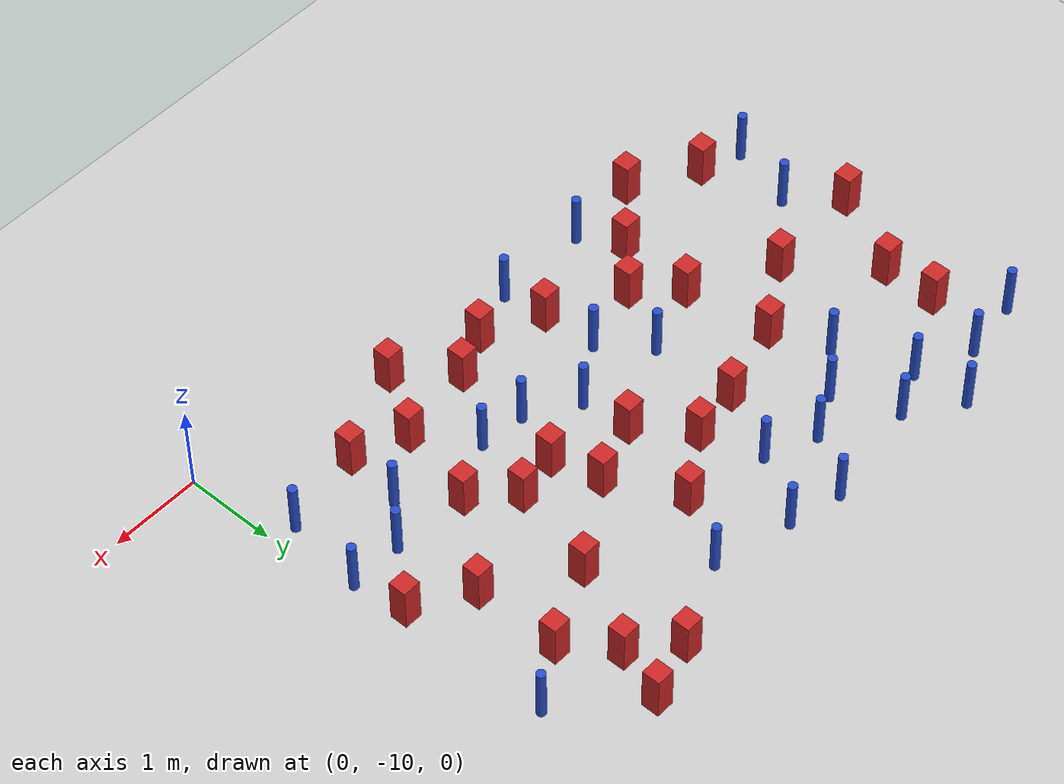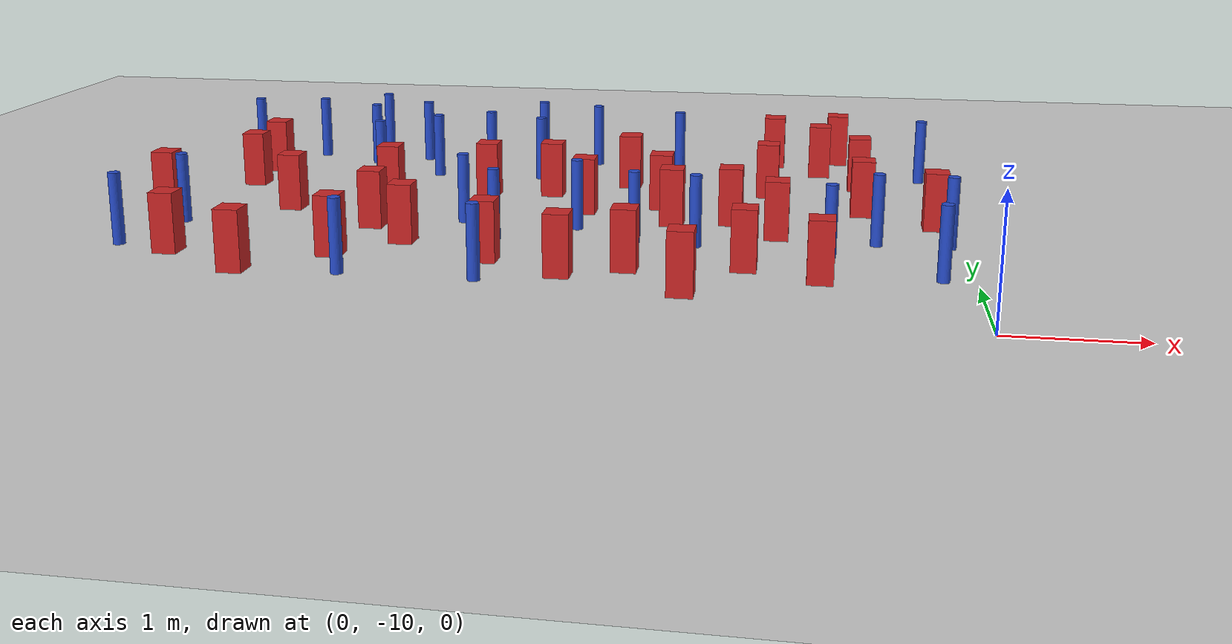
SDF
<sdf version="1.6">
 <world name="default">
  <model name="ground_plane">
   <static>1</static>
   <link name="link">
    <collision name="collision">
     <geometry><plane><normal>0 0 1</normal><size>100 100</size></plane></geometry>
     <surface><friction><ode><mu>100</mu><mu2>50</mu2></ode></friction></surface>
    </collision>
    <visual name="visual">
     <cast_shadows>0</cast_shadows>
     <geometry><plane><normal>0 0 1</normal><size>100 100</size></plane></geometry>
     <material>
      <ambient>1.0 1.0 1.0 1.0</ambient>
      <diffuse>0.8 0.8 0.8 1.0</diffuse>
      <specular>0.01 0.01 0.01 1.000000</specular>
     </material>
    </visual>
   </link>
  </model>
  <model name="pole_obstacle7">
   <static>true</static>
   <pose>-2.53823179781 -5.63883485997 2.88873142074e-08 -9.90536689859e-09 4.60219948989e-07 -1.20965994961e-07</pose>
   <link name="link">
    <pose>0 0 0.3 0 -0 0</pose>
    <inertial>
     <mass>1</mass>
     <inertia><ixx>0.145833</ixx><ixy>0</ixy><ixz>0</ixz><iyy>0.145833</iyy><iyz>0</iyz><izz>0.125</izz></inertia>
    </inertial>
    <collision name="collision">
     <geometry><cylinder><radius>0.05</radius><length>.6</length></cylinder></geometry>
    </collision>
    <visual name="visual">
     <geometry><cylinder><radius>0.05</radius><length>.6</length></cylinder></geometry>
     <material>
      <script><name>Gazebo/Blue</name><uri>file://media/materials/scripts/gazebo.material</uri></script>
     </material>
    </visual>
   </link>
  </model>
  <model name="square_post_obstacle12">
   <static>true</static>
   <pose>-4.19617129068 -6.83578987014 8.22691968438e-08 7.22125133819e-06 -7.54495500217e-07 2.29674213826e-05</pose>
   <link name="link">
    <pose>0 0 0.25 0 -0 0</pose>
    <inertial>
     <mass>100</mass>
     <inertia>
      <ixx>0.166667</ixx>
      <ixy>0</ixy>
      <ixz>0</ixz>
      <iyy>0.166667</iyy>
      <iyz>0</iyz>
      <izz>0.166667</izz>
     </inertia>
    </inertial>
    <collision name="collision"><geometry><box><size>.2 .2 .5</size></box></geometry></collision>
    <visual name="visual">
     <geometry><box><size>.2 .2 .5</size></box></geometry>
     <material>
      <script><name>Gazebo/Red</name><uri>file://media/materials/scripts/gazebo.material</uri></script>
     </material>
    </visual>
   </link>
  </model>
  <model name="pole_obstacle8">
   <static>true</static>
   <pose>-3.8167957619 -8.28989017368 2.88873142074e-08 -9.90536692318e-09 4.6021994893e-07 -1.20965994988e-07</pose>
   <link name="link">
    <pose>0 0 0.3 0 -0 0</pose>
    <inertial>
     <mass>1</mass>
     <inertia><ixx>0.145833</ixx><ixy>0</ixy><ixz>0</ixz><iyy>0.145833</iyy><iyz>0</iyz><izz>0.125</izz></inertia>
    </inertial>
    <collision name="collision">
     <geometry><cylinder><radius>0.05</radius><length>.6</length></cylinder></geometry>
    </collision>
    <visual name="visual">
     <geometry><cylinder><radius>0.05</radius><length>.6</length></cylinder></geometry>
     <material>
      <script><name>Gazebo/Blue</name><uri>file://media/materials/scripts/gazebo.material</uri></script>
     </material>
    </visual>
   </link>
  </model>
  <model name="square_post_obstacle18">
   <static>true</static>
   <pose>-0.201913750008 -7.39393209585 8.22691968438e-08 7.22125133819e-06 -7.54495500217e-07 2.29674213826e-05</pose>
   <link name="link">
    <pose>0 0 0.25 0 -0 0</pose>
    <inertial>
     <mass>100</mass>
     <inertia>
      <ixx>0.166667</ixx>
      <ixy>0</ixy>
      <ixz>0</ixz>
      <iyy>0.166667</iyy>
      <iyz>0</iyz>
      <izz>0.166667</izz>
     </inertia>
    </inertial>
    <collision name="collision"><geometry><box><size>.2 .2 .5</size></box></geometry></collision>
    <visual name="visual">
     <geometry><box><size>.2 .2 .5</size></box></geometry>
     <material>
      <script><name>Gazebo/Red</name><uri>file://media/materials/scripts/gazebo.material</uri></script>
     </material>
    </visual>
   </link>
  </model>
  <model name="square_post_obstacle24">
   <static>true</static>
   <pose>-6.49532119859 -6.15392785858 8.22691968438e-08 7.22125133819e-06 -7.54495500217e-07 2.29674213826e-05</pose>
   <link name="link">
    <pose>0 0 0.25 0 -0 0</pose>
    <inertial>
     <mass>100</mass>
     <inertia>
      <ixx>0.166667</ixx>
      <ixy>0</ixy>
      <ixz>0</ixz>
      <iyy>0.166667</iyy>
      <iyz>0</iyz>
      <izz>0.166667</izz>
     </inertia>
    </inertial>
    <collision name="collision"><geometry><box><size>.2 .2 .5</size></box></geometry></collision>
    <visual name="visual">
     <geometry><box><size>.2 .2 .5</size></box></geometry>
     <material>
      <script><name>Gazebo/Red</name><uri>file://media/materials/scripts/gazebo.material</uri></script>
     </material>
    </visual>
   </link>
  </model>
  <model name="square_post_obstacle30">
   <static>true</static>
   <pose>-0.804594733493 -6.08926844251 8.22691968438e-08 7.2212513382e-06 -7.54495500217e-07 2.29674213826e-05</pose>
   <link name="link">
    <pose>0 0 0.25 0 -0 0</pose>
    <inertial>
     <mass>100</mass>
     <inertia>
      <ixx>0.166667</ixx>
      <ixy>0</ixy>
      <ixz>0</ixz>
      <iyy>0.166667</iyy>
      <iyz>0</iyz>
      <izz>0.166667</izz>
     </inertia>
    </inertial>
    <collision name="collision"><geometry><box><size>.2 .2 .5</size></box></geometry></collision>
    <visual name="visual">
     <geometry><box><size>.2 .2 .5</size></box></geometry>
     <material>
      <script><name>Gazebo/Red</name><uri>file://media/materials/scripts/gazebo.material</uri></script>
     </material>
    </visual>
   </link>
  </model>
  <model name="pole_obstacle36">
   <static>true</static>
   <pose>-5.63041710277 -5.70311133235 2.88873142074e-08 -9.90536690842e-09 4.60219948965e-07 -1.20965994976e-07</pose>
   <link name="link">
    <pose>0 0 0.3 0 -0 0</pose>
    <inertial>
     <mass>1</mass>
     <inertia><ixx>0.145833</ixx><ixy>0</ixy><ixz>0</ixz><iyy>0.145833</iyy><iyz>0</iyz><izz>0.125</izz></inertia>
    </inertial>
    <collision name="collision">
     <geometry><cylinder><radius>0.05</radius><length>.6</length></cylinder></geometry>
    </collision>
    <visual name="visual">
     <geometry><cylinder><radius>0.05</radius><length>.6</length></cylinder></geometry>
     <material>
      <script><name>Gazebo/Blue</name><uri>file://media/materials/scripts/gazebo.material</uri></script>
     </material>
    </visual>
   </link>
  </model>
  <model name="square_post_obstacle46">
   <static>true</static>
   <pose>-1.91938755786 -7.49472343952 8.22691968438e-08 7.2212513382e-06 -7.54495500217e-07 2.29674213826e-05</pose>
   <link name="link">
    <pose>0 0 0.25 0 -0 0</pose>
    <inertial>
     <mass>100</mass>
     <inertia>
      <ixx>0.166667</ixx>
      <ixy>0</ixy>
      <ixz>0</ixz>
      <iyy>0.166667</iyy>
      <iyz>0</iyz>
      <izz>0.166667</izz>
     </inertia>
    </inertial>
    <collision name="collision"><geometry><box><size>.2 .2 .5</size></box></geometry></collision>
    <visual name="visual">
     <geometry><box><size>.2 .2 .5</size></box></geometry>
     <material>
      <script><name>Gazebo/Red</name><uri>file://media/materials/scripts/gazebo.material</uri></script>
     </material>
    </visual>
   </link>
  </model>
  <model name="square_post_obstacle50">
   <static>true</static>
   <pose>-3.60878242614 -6.73543545091 8.22691968438e-08 7.2212513382e-06 -7.54495500217e-07 2.29674213826e-05</pose>
   <link name="link">
    <pose>0 0 0.25 0 -0 0</pose>
    <inertial>
     <mass>100</mass>
     <inertia>
      <ixx>0.166667</ixx>
      <ixy>0</ixy>
      <ixz>0</ixz>
      <iyy>0.166667</iyy>
      <iyz>0</iyz>
      <izz>0.166667</izz>
     </inertia>
    </inertial>
    <collision name="collision"><geometry><box><size>.2 .2 .5</size></box></geometry></collision>
    <visual name="visual">
     <geometry><box><size>.2 .2 .5</size></box></geometry>
     <material>
      <script><name>Gazebo/Red</name><uri>file://media/materials/scripts/gazebo.material</uri></script>
     </material>
    </visual>
   </link>
  </model>
  <model name="square_post_obstacle53">
   <static>true</static>
   <pose>-2.64235110089 -8.9488011302 8.22691968438e-08 7.22125133819e-06 -7.54495500217e-07 2.29674213826e-05</pose>
   <link name="link">
    <pose>0 0 0.25 0 -0 0</pose>
    <inertial>
     <mass>100</mass>
     <inertia>
      <ixx>0.166667</ixx>
      <ixy>0</ixy>
      <ixz>0</ixz>
      <iyy>0.166667</iyy>
      <iyz>0</iyz>
      <izz>0.166667</izz>
     </inertia>
    </inertial>
    <collision name="collision"><geometry><box><size>.2 .2 .5</size></box></geometry></collision>
    <visual name="visual">
     <geometry><box><size>.2 .2 .5</size></box></geometry>
     <material>
      <script><name>Gazebo/Red</name><uri>file://media/materials/scripts/gazebo.material</uri></script>
     </material>
    </visual>
   </link>
  </model>
  <model name="pole_obstacle61">
   <static>true</static>
   <pose>-0.251371558952 -8.87510995026 2.88873142074e-08 -9.90536690955e-09 4.60219948963e-07 -1.20965994979e-07</pose>
   <link name="link">
    <pose>0 0 0.3 0 -0 0</pose>
    <inertial>
     <mass>1</mass>
     <inertia><ixx>0.145833</ixx><ixy>0</ixy><ixz>0</ixz><iyy>0.145833</iyy><iyz>0</iyz><izz>0.125</izz></inertia>
    </inertial>
    <collision name="collision">
     <geometry><cylinder><radius>0.05</radius><length>.6</length></cylinder></geometry>
    </collision>
    <visual name="visual">
     <geometry><cylinder><radius>0.05</radius><length>.6</length></cylinder></geometry>
     <material>
      <script><name>Gazebo/Blue</name><uri>file://media/materials/scripts/gazebo.material</uri></script>
     </material>
    </visual>
   </link>
  </model>
  <model name="square_post_obstacle66">
   <static>true</static>
   <pose>-2.56159638467 -7.05934054008 8.22691968438e-08 7.2212513382e-06 -7.54495500217e-07 2.29674213826e-05</pose>
   <link name="link">
    <pose>0 0 0.25 0 -0 0</pose>
    <inertial>
     <mass>100</mass>
     <inertia>
      <ixx>0.166667</ixx>
      <ixy>0</ixy>
      <ixz>0</ixz>
      <iyy>0.166667</iyy>
      <iyz>0</iyz>
      <izz>0.166667</izz>
     </inertia>
    </inertial>
    <collision name="collision"><geometry><box><size>.2 .2 .5</size></box></geometry></collision>
    <visual name="visual">
     <geometry><box><size>.2 .2 .5</size></box></geometry>
     <material>
      <script><name>Gazebo/Red</name><uri>file://media/materials/scripts/gazebo.material</uri></script>
     </material>
    </visual>
   </link>
  </model>
  <model name="pole_obstacle67">
   <static>true</static>
   <pose>-5.14585500633 -5.47694997933 2.88873142074e-08 -9.90536690842e-09 4.60219948965e-07 -1.20965994976e-07</pose>
   <link name="link">
    <pose>0 0 0.3 0 -0 0</pose>
    <inertial>
     <mass>1</mass>
     <inertia><ixx>0.145833</ixx><ixy>0</ixy><ixz>0</ixz><iyy>0.145833</iyy><iyz>0</iyz><izz>0.125</izz></inertia>
    </inertial>
    <collision name="collision">
     <geometry><cylinder><radius>0.05</radius><length>.6</length></cylinder></geometry>
    </collision>
    <visual name="visual">
     <geometry><cylinder><radius>0.05</radius><length>.6</length></cylinder></geometry>
     <material>
      <script><name>Gazebo/Blue</name><uri>file://media/materials/scripts/gazebo.material</uri></script>
     </material>
    </visual>
   </link>
  </model>
  <model name="square_post_obstacle71">
   <static>true</static>
   <pose>-2.41511090187 -7.59028806534 8.22691968438e-08 7.22125133819e-06 -7.54495500217e-07 2.29674213826e-05</pose>
   <link name="link">
    <pose>0 0 0.25 0 -0 0</pose>
    <inertial>
     <mass>100</mass>
     <inertia>
      <ixx>0.166667</ixx>
      <ixy>0</ixy>
      <ixz>0</ixz>
      <iyy>0.166667</iyy>
      <iyz>0</iyz>
      <izz>0.166667</izz>
     </inertia>
    </inertial>
    <collision name="collision"><geometry><box><size>.2 .2 .5</size></box></geometry></collision>
    <visual name="visual">
     <geometry><box><size>.2 .2 .5</size></box></geometry>
     <material>
      <script><name>Gazebo/Red</name><uri>file://media/materials/scripts/gazebo.material</uri></script>
     </material>
    </visual>
   </link>
  </model>
  <model name="square_post_obstacle72">
   <static>true</static>
   <pose>-3.21779357738 -7.30907759392 8.22691968438e-08 7.2212513382e-06 -7.54495500217e-07 2.29674213826e-05</pose>
   <link name="link">
    <pose>0 0 0.25 0 -0 0</pose>
    <inertial>
     <mass>100</mass>
     <inertia>
      <ixx>0.166667</ixx>
      <ixy>0</ixy>
      <ixz>0</ixz>
      <iyy>0.166667</iyy>
      <iyz>0</iyz>
      <izz>0.166667</izz>
     </inertia>
    </inertial>
    <collision name="collision"><geometry><box><size>.2 .2 .5</size></box></geometry></collision>
    <visual name="visual">
     <geometry><box><size>.2 .2 .5</size></box></geometry>
     <material>
      <script><name>Gazebo/Red</name><uri>file://media/materials/scripts/gazebo.material</uri></script>
     </material>
    </visual>
   </link>
  </model>
  <model name="pole_obstacle74">
   <static>true</static>
   <pose>-0.124680964791 -7.98603724583 2.88873142074e-08 -9.90536690297e-09 4.60219948978e-07 -1.20965994968e-07</pose>
   <link name="link">
    <pose>0 0 0.3 0 -0 0</pose>
    <inertial>
     <mass>1</mass>
     <inertia><ixx>0.145833</ixx><ixy>0</ixy><ixz>0</ixz><iyy>0.145833</iyy><iyz>0</iyz><izz>0.125</izz></inertia>
    </inertial>
    <collision name="collision">
     <geometry><cylinder><radius>0.05</radius><length>.6</length></cylinder></geometry>
    </collision>
    <visual name="visual">
     <geometry><cylinder><radius>0.05</radius><length>.6</length></cylinder></geometry>
     <material>
      <script><name>Gazebo/Blue</name><uri>file://media/materials/scripts/gazebo.material</uri></script>
     </material>
    </visual>
   </link>
  </model>
  <model name="square_post_obstacle79">
   <static>true</static>
   <pose>-0.993597124089 -5.01453886568 8.22691968438e-08 7.22125133819e-06 -7.54495500217e-07 2.29674213826e-05</pose>
   <link name="link">
    <pose>0 0 0.25 0 -0 0</pose>
    <inertial>
     <mass>100</mass>
     <inertia>
      <ixx>0.166667</ixx>
      <ixy>0</ixy>
      <ixz>0</ixz>
      <iyy>0.166667</iyy>
      <iyz>0</iyz>
      <izz>0.166667</izz>
     </inertia>
    </inertial>
    <collision name="collision"><geometry><box><size>.2 .2 .5</size></box></geometry></collision>
    <visual name="visual">
     <geometry><box><size>.2 .2 .5</size></box></geometry>
     <material>
      <script><name>Gazebo/Red</name><uri>file://media/materials/scripts/gazebo.material</uri></script>
     </material>
    </visual>
   </link>
  </model>
  <model name="pole_obstacle82">
   <static>true</static>
   <pose>-6.58360418045 -8.16239508596 2.88873142074e-08 -9.9053668967e-09 4.60219948993e-07 -1.20965994957e-07</pose>
   <link name="link">
    <pose>0 0 0.3 0 -0 0</pose>
    <inertial>
     <mass>1</mass>
     <inertia><ixx>0.145833</ixx><ixy>0</ixy><ixz>0</ixz><iyy>0.145833</iyy><iyz>0</iyz><izz>0.125</izz></inertia>
    </inertial>
    <collision name="collision">
     <geometry><cylinder><radius>0.05</radius><length>.6</length></cylinder></geometry>
    </collision>
    <visual name="visual">
     <geometry><cylinder><radius>0.05</radius><length>.6</length></cylinder></geometry>
     <material>
      <script><name>Gazebo/Blue</name><uri>file://media/materials/scripts/gazebo.material</uri></script>
     </material>
    </visual>
   </link>
  </model>
  <model name="square_post_obstacle81">
   <static>true</static>
   <pose>-1.7392110517 -8.80446424454 8.22691968438e-08 7.2212513382e-06 -7.54495500217e-07 2.29674213826e-05</pose>
   <link name="link">
    <pose>0 0 0.25 0 -0 0</pose>
    <inertial>
     <mass>100</mass>
     <inertia>
      <ixx>0.166667</ixx>
      <ixy>0</ixy>
      <ixz>0</ixz>
      <iyy>0.166667</iyy>
      <iyz>0</iyz>
      <izz>0.166667</izz>
     </inertia>
    </inertial>
    <collision name="collision"><geometry><box><size>.2 .2 .5</size></box></geometry></collision>
    <visual name="visual">
     <geometry><box><size>.2 .2 .5</size></box></geometry>
     <material>
      <script><name>Gazebo/Red</name><uri>file://media/materials/scripts/gazebo.material</uri></script>
     </material>
    </visual>
   </link>
  </model>
  <model name="pole_obstacle94">
   <static>true</static>
   <pose>-6.26370341023 -5.45382751526 2.88873142074e-08 -9.90536690842e-09 4.60219948965e-07 -1.20965994976e-07</pose>
   <link name="link">
    <pose>0 0 0.3 0 -0 0</pose>
    <inertial>
     <mass>1</mass>
     <inertia><ixx>0.145833</ixx><ixy>0</ixy><ixz>0</ixz><iyy>0.145833</iyy><iyz>0</iyz><izz>0.125</izz></inertia>
    </inertial>
    <collision name="collision">
     <geometry><cylinder><radius>0.05</radius><length>.6</length></cylinder></geometry>
    </collision>
    <visual name="visual">
     <geometry><cylinder><radius>0.05</radius><length>.6</length></cylinder></geometry>
     <material>
      <script><name>Gazebo/Blue</name><uri>file://media/materials/scripts/gazebo.material</uri></script>
     </material>
    </visual>
   </link>
  </model>
  <model name="pole_obstacle97">
   <static>true</static>
   <pose>-3.84303550367 -6.12399940535 2.88873142074e-08 -9.90536689859e-09 4.60219948989e-07 -1.20965994961e-07</pose>
   <link name="link">
    <pose>0 0 0.3 0 -0 0</pose>
    <inertial>
     <mass>1</mass>
     <inertia><ixx>0.145833</ixx><ixy>0</ixy><ixz>0</ixz><iyy>0.145833</iyy><iyz>0</iyz><izz>0.125</izz></inertia>
    </inertial>
    <collision name="collision">
     <geometry><cylinder><radius>0.05</radius><length>.6</length></cylinder></geometry>
    </collision>
    <visual name="visual">
     <geometry><cylinder><radius>0.05</radius><length>.6</length></cylinder></geometry>
     <material>
      <script><name>Gazebo/Blue</name><uri>file://media/materials/scripts/gazebo.material</uri></script>
     </material>
    </visual>
   </link>
  </model>
  <model name="pole_obstacle99">
   <static>true</static>
   <pose>-4.38720206674 -5.90240048466 2.88873142074e-08 -9.90536690842e-09 4.60219948965e-07 -1.20965994976e-07</pose>
   <link name="link">
    <pose>0 0 0.3 0 -0 0</pose>
    <inertial>
     <mass>1</mass>
     <inertia><ixx>0.145833</ixx><ixy>0</ixy><ixz>0</ixz><iyy>0.145833</iyy><iyz>0</iyz><izz>0.125</izz></inertia>
    </inertial>
    <collision name="collision">
     <geometry><cylinder><radius>0.05</radius><length>.6</length></cylinder></geometry>
    </collision>
    <visual name="visual">
     <geometry><cylinder><radius>0.05</radius><length>.6</length></cylinder></geometry>
     <material>
      <script><name>Gazebo/Blue</name><uri>file://media/materials/scripts/gazebo.material</uri></script>
     </material>
    </visual>
   </link>
  </model>
  <model name="square_post_obstacle89">
   <static>true</static>
   <pose>-2.16073549071 -9.47947698504 8.22691968438e-08 7.22125133819e-06 -7.54495500217e-07 2.29674213826e-05</pose>
   <link name="link">
    <pose>0 0 0.25 0 -0 0</pose>
    <inertial>
     <mass>100</mass>
     <inertia>
      <ixx>0.166667</ixx>
      <ixy>0</ixy>
      <ixz>0</ixz>
      <iyy>0.166667</iyy>
      <iyz>0</iyz>
      <izz>0.166667</izz>
     </inertia>
    </inertial>
    <collision name="collision"><geometry><box><size>.2 .2 .5</size></box></geometry></collision>
    <visual name="visual">
     <geometry><box><size>.2 .2 .5</size></box></geometry>
     <material>
      <script><name>Gazebo/Red</name><uri>file://media/materials/scripts/gazebo.material</uri></script>
     </material>
    </visual>
   </link>
  </model>
  <model name="square_post_obstacle100">
   <static>true</static>
   <pose>-1.61738704206 -5.20418120068 8.22691968438e-08 7.2212513382e-06 -7.54495500217e-07 2.29674213826e-05</pose>
   <link name="link">
    <pose>0 0 0.25 0 -0 0</pose>
    <inertial>
     <mass>100</mass>
     <inertia>
      <ixx>0.166667</ixx>
      <ixy>0</ixy>
      <ixz>0</ixz>
      <iyy>0.166667</iyy>
      <iyz>0</iyz>
      <izz>0.166667</izz>
     </inertia>
    </inertial>
    <collision name="collision"><geometry><box><size>.2 .2 .5</size></box></geometry></collision>
    <visual name="visual">
     <geometry><box><size>.2 .2 .5</size></box></geometry>
     <material>
      <script><name>Gazebo/Red</name><uri>file://media/materials/scripts/gazebo.material</uri></script>
     </material>
    </visual>
   </link>
  </model>
  <model name="square_post_obstacle102">
   <static>true</static>
   <pose>-5.06215263185 -7.08496848797 8.22691968438e-08 7.22125133819e-06 -7.54495500217e-07 2.29674213826e-05</pose>
   <link name="link">
    <pose>0 0 0.25 0 -0 0</pose>
    <inertial>
     <mass>100</mass>
     <inertia>
      <ixx>0.166667</ixx>
      <ixy>0</ixy>
      <ixz>0</ixz>
      <iyy>0.166667</iyy>
      <iyz>0</iyz>
      <izz>0.166667</izz>
     </inertia>
    </inertial>
    <collision name="collision"><geometry><box><size>.2 .2 .5</size></box></geometry></collision>
    <visual name="visual">
     <geometry><box><size>.2 .2 .5</size></box></geometry>
     <material>
      <script><name>Gazebo/Red</name><uri>file://media/materials/scripts/gazebo.material</uri></script>
     </material>
    </visual>
   </link>
  </model>
  <model name="square_post_obstacle104">
   <static>true</static>
   <pose>-5.82538586305 -7.56994802774 8.22691968438e-08 7.22125133819e-06 -7.54495500217e-07 2.29674213826e-05</pose>
   <link name="link">
    <pose>0 0 0.25 0 -0 0</pose>
    <inertial>
     <mass>100</mass>
     <inertia>
      <ixx>0.166667</ixx>
      <ixy>0</ixy>
      <ixz>0</ixz>
      <iyy>0.166667</iyy>
      <iyz>0</iyz>
      <izz>0.166667</izz>
     </inertia>
    </inertial>
    <collision name="collision"><geometry><box><size>.2 .2 .5</size></box></geometry></collision>
    <visual name="visual">
     <geometry><box><size>.2 .2 .5</size></box></geometry>
     <material>
      <script><name>Gazebo/Red</name><uri>file://media/materials/scripts/gazebo.material</uri></script>
     </material>
    </visual>
   </link>
  </model>
  <model name="square_post_obstacle110">
   <static>true</static>
   <pose>-1.17105818911 -5.57972504633 8.22691968438e-08 7.2212513382e-06 -7.54495500217e-07 2.29674213826e-05</pose>
   <link name="link">
    <pose>0 0 0.25 0 -0 0</pose>
    <inertial>
     <mass>100</mass>
     <inertia>
      <ixx>0.166667</ixx>
      <ixy>0</ixy>
      <ixz>0</ixz>
      <iyy>0.166667</iyy>
      <iyz>0</iyz>
      <izz>0.166667</izz>
     </inertia>
    </inertial>
    <collision name="collision"><geometry><box><size>.2 .2 .5</size></box></geometry></collision>
    <visual name="visual">
     <geometry><box><size>.2 .2 .5</size></box></geometry>
     <material>
      <script><name>Gazebo/Red</name><uri>file://media/materials/scripts/gazebo.material</uri></script>
     </material>
    </visual>
   </link>
  </model>
  <model name="pole_obstacle124">
   <static>true</static>
   <pose>-6.93185560216 -5.54993864952 2.88873142074e-08 -9.90536690842e-09 4.60219948965e-07 -1.20965994976e-07</pose>
   <link name="link">
    <pose>0 0 0.3 0 -0 0</pose>
    <inertial>
     <mass>1</mass>
     <inertia><ixx>0.145833</ixx><ixy>0</ixy><ixz>0</ixz><iyy>0.145833</iyy><iyz>0</iyz><izz>0.125</izz></inertia>
    </inertial>
    <collision name="collision">
     <geometry><cylinder><radius>0.05</radius><length>.6</length></cylinder></geometry>
    </collision>
    <visual name="visual">
     <geometry><cylinder><radius>0.05</radius><length>.6</length></cylinder></geometry>
     <material>
      <script><name>Gazebo/Blue</name><uri>file://media/materials/scripts/gazebo.material</uri></script>
     </material>
    </visual>
   </link>
  </model>
  <model name="pole_obstacle126">
   <static>true</static>
   <pose>-2.66704110315 -8.19262181839 2.88873142074e-08 -9.90536692318e-09 4.6021994893e-07 -1.20965994988e-07</pose>
   <link name="link">
    <pose>0 0 0.3 0 -0 0</pose>
    <inertial>
     <mass>1</mass>
     <inertia><ixx>0.145833</ixx><ixy>0</ixy><ixz>0</ixz><iyy>0.145833</iyy><iyz>0</iyz><izz>0.125</izz></inertia>
    </inertial>
    <collision name="collision">
     <geometry><cylinder><radius>0.05</radius><length>.6</length></cylinder></geometry>
    </collision>
    <visual name="visual">
     <geometry><cylinder><radius>0.05</radius><length>.6</length></cylinder></geometry>
     <material>
      <script><name>Gazebo/Blue</name><uri>file://media/materials/scripts/gazebo.material</uri></script>
     </material>
    </visual>
   </link>
  </model>
  <model name="pole_obstacle132">
   <static>true</static>
   <pose>-3.38564117838 -5.42651526532 2.88873142074e-08 -9.90536689859e-09 4.60219948989e-07 -1.20965994961e-07</pose>
   <link name="link">
    <pose>0 0 0.3 0 -0 0</pose>
    <inertial>
     <mass>1</mass>
     <inertia><ixx>0.145833</ixx><ixy>0</ixy><ixz>0</ixz><iyy>0.145833</iyy><iyz>0</iyz><izz>0.125</izz></inertia>
    </inertial>
    <collision name="collision">
     <geometry><cylinder><radius>0.05</radius><length>.6</length></cylinder></geometry>
    </collision>
    <visual name="visual">
     <geometry><cylinder><radius>0.05</radius><length>.6</length></cylinder></geometry>
     <material>
      <script><name>Gazebo/Blue</name><uri>file://media/materials/scripts/gazebo.material</uri></script>
     </material>
    </visual>
   </link>
  </model>
  <model name="pole_obstacle133">
   <static>true</static>
   <pose>-5.33647797288 -6.50951520743 2.88873142074e-08 -9.90536690842e-09 4.60219948965e-07 -1.20965994976e-07</pose>
   <link name="link">
    <pose>0 0 0.3 0 -0 0</pose>
    <inertial>
     <mass>1</mass>
     <inertia><ixx>0.145833</ixx><ixy>0</ixy><ixz>0</ixz><iyy>0.145833</iyy><iyz>0</iyz><izz>0.125</izz></inertia>
    </inertial>
    <collision name="collision">
     <geometry><cylinder><radius>0.05</radius><length>.6</length></cylinder></geometry>
    </collision>
    <visual name="visual">
     <geometry><cylinder><radius>0.05</radius><length>.6</length></cylinder></geometry>
     <material>
      <script><name>Gazebo/Blue</name><uri>file://media/materials/scripts/gazebo.material</uri></script>
     </material>
    </visual>
   </link>
  </model>
  <model name="square_post_obstacle116">
   <static>true</static>
   <pose>-3.75741759312 -8.8743625634 8.22691968438e-08 7.22125133819e-06 -7.54495500217e-07 2.29674213826e-05</pose>
   <link name="link">
    <pose>0 0 0.25 0 -0 0</pose>
    <inertial>
     <mass>100</mass>
     <inertia>
      <ixx>0.166667</ixx>
      <ixy>0</ixy>
      <ixz>0</ixz>
      <iyy>0.166667</iyy>
      <iyz>0</iyz>
      <izz>0.166667</izz>
     </inertia>
    </inertial>
    <collision name="collision"><geometry><box><size>.2 .2 .5</size></box></geometry></collision>
    <visual name="visual">
     <geometry><box><size>.2 .2 .5</size></box></geometry>
     <material>
      <script><name>Gazebo/Red</name><uri>file://media/materials/scripts/gazebo.material</uri></script>
     </material>
    </visual>
   </link>
  </model>
  <model name="square_post_obstacle121">
   <static>true</static>
   <pose>-5.60752488592 -9.42722519678 8.22691968438e-08 7.22125133819e-06 -7.54495500217e-07 2.29674213826e-05</pose>
   <link name="link">
    <pose>0 0 0.25 0 -0 0</pose>
    <inertial>
     <mass>100</mass>
     <inertia>
      <ixx>0.166667</ixx>
      <ixy>0</ixy>
      <ixz>0</ixz>
      <iyy>0.166667</iyy>
      <iyz>0</iyz>
      <izz>0.166667</izz>
     </inertia>
    </inertial>
    <collision name="collision"><geometry><box><size>.2 .2 .5</size></box></geometry></collision>
    <visual name="visual">
     <geometry><box><size>.2 .2 .5</size></box></geometry>
     <material>
      <script><name>Gazebo/Red</name><uri>file://media/materials/scripts/gazebo.material</uri></script>
     </material>
    </visual>
   </link>
  </model>
  <model name="square_post_obstacle122">
   <static>true</static>
   <pose>-5.00677168634 -8.91145327484 8.22691968438e-08 7.22125133819e-06 -7.54495500217e-07 2.29674213826e-05</pose>
   <link name="link">
    <pose>0 0 0.25 0 -0 0</pose>
    <inertial>
     <mass>100</mass>
     <inertia>
      <ixx>0.166667</ixx>
      <ixy>0</ixy>
      <ixz>0</ixz>
      <iyy>0.166667</iyy>
      <iyz>0</iyz>
      <izz>0.166667</izz>
     </inertia>
    </inertial>
    <collision name="collision"><geometry><box><size>.2 .2 .5</size></box></geometry></collision>
    <visual name="visual">
     <geometry><box><size>.2 .2 .5</size></box></geometry>
     <material>
      <script><name>Gazebo/Red</name><uri>file://media/materials/scripts/gazebo.material</uri></script>
     </material>
    </visual>
   </link>
  </model>
  <model name="pole_obstacle140">
   <static>true</static>
   <pose>-6.81435822045 -8.90867533393 2.88873142074e-08 -9.9053668967e-09 4.60219948993e-07 -1.20965994957e-07</pose>
   <link name="link">
    <pose>0 0 0.3 0 -0 0</pose>
    <inertial>
     <mass>1</mass>
     <inertia><ixx>0.145833</ixx><ixy>0</ixy><ixz>0</ixz><iyy>0.145833</iyy><iyz>0</iyz><izz>0.125</izz></inertia>
    </inertial>
    <collision name="collision">
     <geometry><cylinder><radius>0.05</radius><length>.6</length></cylinder></geometry>
    </collision>
    <visual name="visual">
     <geometry><cylinder><radius>0.05</radius><length>.6</length></cylinder></geometry>
     <material>
      <script><name>Gazebo/Blue</name><uri>file://media/materials/scripts/gazebo.material</uri></script>
     </material>
    </visual>
   </link>
  </model>
  <model name="pole_obstacle141">
   <static>true</static>
   <pose>-0.22388676953 -5.72868753862 2.88873142074e-08 -9.90536689703e-09 4.60219948992e-07 -1.20965994959e-07</pose>
   <link name="link">
    <pose>0 0 0.3 0 -0 0</pose>
    <inertial>
     <mass>1</mass>
     <inertia><ixx>0.145833</ixx><ixy>0</ixy><ixz>0</ixz><iyy>0.145833</iyy><iyz>0</iyz><izz>0.125</izz></inertia>
    </inertial>
    <collision name="collision">
     <geometry><cylinder><radius>0.05</radius><length>.6</length></cylinder></geometry>
    </collision>
    <visual name="visual">
     <geometry><cylinder><radius>0.05</radius><length>.6</length></cylinder></geometry>
     <material>
      <script><name>Gazebo/Blue</name><uri>file://media/materials/scripts/gazebo.material</uri></script>
     </material>
    </visual>
   </link>
  </model>
  <model name="square_post_obstacle136">
   <static>true</static>
   <pose>-3.12335531418 -9.16707927659 8.22691968438e-08 7.2212513382e-06 -7.54495500217e-07 2.29674213826e-05</pose>
   <link name="link">
    <pose>0 0 0.25 0 -0 0</pose>
    <inertial>
     <mass>100</mass>
     <inertia>
      <ixx>0.166667</ixx>
      <ixy>0</ixy>
      <ixz>0</ixz>
      <iyy>0.166667</iyy>
      <iyz>0</iyz>
      <izz>0.166667</izz>
     </inertia>
    </inertial>
    <collision name="collision"><geometry><box><size>.2 .2 .5</size></box></geometry></collision>
    <visual name="visual">
     <geometry><box><size>.2 .2 .5</size></box></geometry>
     <material>
      <script><name>Gazebo/Red</name><uri>file://media/materials/scripts/gazebo.material</uri></script>
     </material>
    </visual>
   </link>
  </model>
  <model name="square_post_obstacle142">
   <static>true</static>
   <pose>-6.49543358631 -6.74615093619 8.22691968438e-08 7.2212513382e-06 -7.54495500217e-07 2.29674213826e-05</pose>
   <link name="link">
    <pose>0 0 0.25 0 -0 0</pose>
    <inertial>
     <mass>100</mass>
     <inertia>
      <ixx>0.166667</ixx>
      <ixy>0</ixy>
      <ixz>0</ixz>
      <iyy>0.166667</iyy>
      <iyz>0</iyz>
      <izz>0.166667</izz>
     </inertia>
    </inertial>
    <collision name="collision"><geometry><box><size>.2 .2 .5</size></box></geometry></collision>
    <visual name="visual">
     <geometry><box><size>.2 .2 .5</size></box></geometry>
     <material>
      <script><name>Gazebo/Red</name><uri>file://media/materials/scripts/gazebo.material</uri></script>
     </material>
    </visual>
   </link>
  </model>
  <model name="pole_obstacle155">
   <static>true</static>
   <pose>-3.19337569155 -7.86583283814 2.88873142074e-08 -9.90536689859e-09 4.60219948989e-07 -1.20965994961e-07</pose>
   <link name="link">
    <pose>0 0 0.3 0 -0 0</pose>
    <inertial>
     <mass>1</mass>
     <inertia><ixx>0.145833</ixx><ixy>0</ixy><ixz>0</ixz><iyy>0.145833</iyy><iyz>0</iyz><izz>0.125</izz></inertia>
    </inertial>
    <collision name="collision">
     <geometry><cylinder><radius>0.05</radius><length>.6</length></cylinder></geometry>
    </collision>
    <visual name="visual">
     <geometry><cylinder><radius>0.05</radius><length>.6</length></cylinder></geometry>
     <material>
      <script><name>Gazebo/Blue</name><uri>file://media/materials/scripts/gazebo.material</uri></script>
     </material>
    </visual>
   </link>
  </model>
  <model name="square_post_obstacle151">
   <static>true</static>
   <pose>-6.98054215713 -7.64724979141 8.22691968438e-08 7.22125133819e-06 -7.54495500217e-07 2.29674213826e-05</pose>
   <link name="link">
    <pose>0 0 0.25 0 -0 0</pose>
    <inertial>
     <mass>100</mass>
     <inertia>
      <ixx>0.166667</ixx>
      <ixy>0</ixy>
      <ixz>0</ixz>
      <iyy>0.166667</iyy>
      <iyz>0</iyz>
      <izz>0.166667</izz>
     </inertia>
    </inertial>
    <collision name="collision"><geometry><box><size>.2 .2 .5</size></box></geometry></collision>
    <visual name="visual">
     <geometry><box><size>.2 .2 .5</size></box></geometry>
     <material>
      <script><name>Gazebo/Red</name><uri>file://media/materials/scripts/gazebo.material</uri></script>
     </material>
    </visual>
   </link>
  </model>
  <model name="square_post_obstacle152">
   <static>true</static>
   <pose>-1.51816102224 -7.88985871412 8.22691968438e-08 7.2212513382e-06 -7.54495500217e-07 2.29674213826e-05</pose>
   <link name="link">
    <pose>0 0 0.25 0 -0 0</pose>
    <inertial>
     <mass>100</mass>
     <inertia>
      <ixx>0.166667</ixx>
      <ixy>0</ixy>
      <ixz>0</ixz>
      <iyy>0.166667</iyy>
      <iyz>0</iyz>
      <izz>0.166667</izz>
     </inertia>
    </inertial>
    <collision name="collision"><geometry><box><size>.2 .2 .5</size></box></geometry></collision>
    <visual name="visual">
     <geometry><box><size>.2 .2 .5</size></box></geometry>
     <material>
      <script><name>Gazebo/Red</name><uri>file://media/materials/scripts/gazebo.material</uri></script>
     </material>
    </visual>
   </link>
  </model>
  <model name="pole_obstacle164">
   <static>true</static>
   <pose>-2.16216672961 -8.24199569991 2.88873142074e-08 -9.90536692318e-09 4.6021994893e-07 -1.20965994988e-07</pose>
   <link name="link">
    <pose>0 0 0.3 0 -0 0</pose>
    <inertial>
     <mass>1</mass>
     <inertia><ixx>0.145833</ixx><ixy>0</ixy><ixz>0</ixz><iyy>0.145833</iyy><iyz>0</iyz><izz>0.125</izz></inertia>
    </inertial>
    <collision name="collision">
     <geometry><cylinder><radius>0.05</radius><length>.6</length></cylinder></geometry>
    </collision>
    <visual name="visual">
     <geometry><cylinder><radius>0.05</radius><length>.6</length></cylinder></geometry>
     <material>
      <script><name>Gazebo/Blue</name><uri>file://media/materials/scripts/gazebo.material</uri></script>
     </material>
    </visual>
   </link>
  </model>
  <model name="pole_obstacle171">
   <static>true</static>
   <pose>-0.708126615647 -7.98349584116 2.88873142074e-08 -9.90536689455e-09 4.60219948998e-07 -1.20965994955e-07</pose>
   <link name="link">
    <pose>0 0 0.3 0 -0 0</pose>
    <inertial>
     <mass>1</mass>
     <inertia><ixx>0.145833</ixx><ixy>0</ixy><ixz>0</ixz><iyy>0.145833</iyy><iyz>0</iyz><izz>0.125</izz></inertia>
    </inertial>
    <collision name="collision">
     <geometry><cylinder><radius>0.05</radius><length>.6</length></cylinder></geometry>
    </collision>
    <visual name="visual">
     <geometry><cylinder><radius>0.05</radius><length>.6</length></cylinder></geometry>
     <material>
      <script><name>Gazebo/Blue</name><uri>file://media/materials/scripts/gazebo.material</uri></script>
     </material>
    </visual>
   </link>
  </model>
  <model name="square_post_obstacle166">
   <static>true</static>
   <pose>-1.64150256825 -6.47765211512 8.22691968438e-08 7.2212513382e-06 -7.54495500217e-07 2.29674213826e-05</pose>
   <link name="link">
    <pose>0 0 0.25 0 -0 0</pose>
    <inertial>
     <mass>100</mass>
     <inertia>
      <ixx>0.166667</ixx>
      <ixy>0</ixy>
      <ixz>0</ixz>
      <iyy>0.166667</iyy>
      <iyz>0</iyz>
      <izz>0.166667</izz>
     </inertia>
    </inertial>
    <collision name="collision"><geometry><box><size>.2 .2 .5</size></box></geometry></collision>
    <visual name="visual">
     <geometry><box><size>.2 .2 .5</size></box></geometry>
     <material>
      <script><name>Gazebo/Red</name><uri>file://media/materials/scripts/gazebo.material</uri></script>
     </material>
    </visual>
   </link>
  </model>
  <model name="pole_obstacle179">
   <static>true</static>
   <pose>-5.68882873543 -5.09624346517 2.88873142074e-08 -9.90536690842e-09 4.60219948965e-07 -1.20965994976e-07</pose>
   <link name="link">
    <pose>0 0 0.3 0 -0 0</pose>
    <inertial>
     <mass>1</mass>
     <inertia><ixx>0.145833</ixx><ixy>0</ixy><ixz>0</ixz><iyy>0.145833</iyy><iyz>0</iyz><izz>0.125</izz></inertia>
    </inertial>
    <collision name="collision">
     <geometry><cylinder><radius>0.05</radius><length>.6</length></cylinder></geometry>
    </collision>
    <visual name="visual">
     <geometry><cylinder><radius>0.05</radius><length>.6</length></cylinder></geometry>
     <material>
      <script><name>Gazebo/Blue</name><uri>file://media/materials/scripts/gazebo.material</uri></script>
     </material>
    </visual>
   </link>
  </model>
  <model name="square_post_obstacle177">
   <static>true</static>
   <pose>-2.93647920719 -6.29971415703 8.22691968438e-08 7.2212513382e-06 -7.54495500217e-07 2.29674213826e-05</pose>
   <link name="link">
    <pose>0 0 0.25 0 -0 0</pose>
    <inertial>
     <mass>100</mass>
     <inertia>
      <ixx>0.166667</ixx>
      <ixy>0</ixy>
      <ixz>0</ixz>
      <iyy>0.166667</iyy>
      <iyz>0</iyz>
      <izz>0.166667</izz>
     </inertia>
    </inertial>
    <collision name="collision"><geometry><box><size>.2 .2 .5</size></box></geometry></collision>
    <visual name="visual">
     <geometry><box><size>.2 .2 .5</size></box></geometry>
     <material>
      <script><name>Gazebo/Red</name><uri>file://media/materials/scripts/gazebo.material</uri></script>
     </material>
    </visual>
   </link>
  </model>
  <model name="square_post_obstacle194">
   <static>true</static>
   <pose>-0.79839828207 -7.03206813963 8.22691968438e-08 7.22125133819e-06 -7.54495500217e-07 2.29674213826e-05</pose>
   <link name="link">
    <pose>0 0 0.25 0 -0 0</pose>
    <inertial>
     <mass>100</mass>
     <inertia>
      <ixx>0.166667</ixx>
      <ixy>0</ixy>
      <ixz>0</ixz>
      <iyy>0.166667</iyy>
      <iyz>0</iyz>
      <izz>0.166667</izz>
     </inertia>
    </inertial>
    <collision name="collision"><geometry><box><size>.2 .2 .5</size></box></geometry></collision>
    <visual name="visual">
     <geometry><box><size>.2 .2 .5</size></box></geometry>
     <material>
      <script><name>Gazebo/Red</name><uri>file://media/materials/scripts/gazebo.material</uri></script>
     </material>
    </visual>
   </link>
  </model>
  <model name="square_post_obstacle198">
   <static>true</static>
   <pose>-4.93389832932 -8.04460954105 8.22691968438e-08 7.2212513382e-06 -7.54495500217e-07 2.29674213826e-05</pose>
   <link name="link">
    <pose>0 0 0.25 0 -0 0</pose>
    <inertial>
     <mass>100</mass>
     <inertia>
      <ixx>0.166667</ixx>
      <ixy>0</ixy>
      <ixz>0</ixz>
      <iyy>0.166667</iyy>
      <iyz>0</iyz>
      <izz>0.166667</izz>
     </inertia>
    </inertial>
    <collision name="collision"><geometry><box><size>.2 .2 .5</size></box></geometry></collision>
    <visual name="visual">
     <geometry><box><size>.2 .2 .5</size></box></geometry>
     <material>
      <script><name>Gazebo/Red</name><uri>file://media/materials/scripts/gazebo.material</uri></script>
     </material>
    </visual>
   </link>
  </model>
  <model name="pole_obstacle196">
   <static>true</static>
   <pose>-4.79215450968 -9.38783090062 2.88873142074e-08 -9.9053668967e-09 4.60219948993e-07 -1.20965994957e-07</pose>
   <link name="link">
    <pose>0 0 0.3 0 -0 0</pose>
    <inertial>
     <mass>1</mass>
     <inertia><ixx>0.145833</ixx><ixy>0</ixy><ixz>0</ixz><iyy>0.145833</iyy><iyz>0</iyz><izz>0.125</izz></inertia>
    </inertial>
    <collision name="collision">
     <geometry><cylinder><radius>0.05</radius><length>.6</length></cylinder></geometry>
    </collision>
    <visual name="visual">
     <geometry><cylinder><radius>0.05</radius><length>.6</length></cylinder></geometry>
     <material>
      <script><name>Gazebo/Blue</name><uri>file://media/materials/scripts/gazebo.material</uri></script>
     </material>
    </visual>
   </link>
  </model>
  <model name="pole_obstacle197">
   <static>true</static>
   <pose>-1.08555293442 -8.3885564158 2.88873142074e-08 -9.90536690474e-09 4.60219948974e-07 -1.2096599497e-07</pose>
   <link name="link">
    <pose>0 0 0.3 0 -0 0</pose>
    <inertial>
     <mass>1</mass>
     <inertia><ixx>0.145833</ixx><ixy>0</ixy><ixz>0</ixz><iyy>0.145833</iyy><iyz>0</iyz><izz>0.125</izz></inertia>
    </inertial>
    <collision name="collision">
     <geometry><cylinder><radius>0.05</radius><length>.6</length></cylinder></geometry>
    </collision>
    <visual name="visual">
     <geometry><cylinder><radius>0.05</radius><length>.6</length></cylinder></geometry>
     <material>
      <script><name>Gazebo/Blue</name><uri>file://media/materials/scripts/gazebo.material</uri></script>
     </material>
    </visual>
   </link>
  </model>
  <model name="square_post_obstacle205">
   <static>true</static>
   <pose>-1.16179391238 -9.02542688725 8.22691968438e-08 7.2212513382e-06 -7.54495500217e-07 2.29674213826e-05</pose>
   <link name="link">
    <pose>0 0 0.25 0 -0 0</pose>
    <inertial>
     <mass>100</mass>
     <inertia>
      <ixx>0.166667</ixx>
      <ixy>0</ixy>
      <ixz>0</ixz>
      <iyy>0.166667</iyy>
      <iyz>0</iyz>
      <izz>0.166667</izz>
     </inertia>
    </inertial>
    <collision name="collision"><geometry><box><size>.2 .2 .5</size></box></geometry></collision>
    <visual name="visual">
     <geometry><box><size>.2 .2 .5</size></box></geometry>
     <material>
      <script><name>Gazebo/Red</name><uri>file://media/materials/scripts/gazebo.material</uri></script>
     </material>
    </visual>
   </link>
  </model>
  <model name="square_post_obstacle208">
   <static>true</static>
   <pose>-4.54203982113 -8.46760465509 8.22691968438e-08 7.22125133819e-06 -7.54495500217e-07 2.29674213826e-05</pose>
   <link name="link">
    <pose>0 0 0.25 0 -0 0</pose>
    <inertial>
     <mass>100</mass>
     <inertia>
      <ixx>0.166667</ixx>
      <ixy>0</ixy>
      <ixz>0</ixz>
      <iyy>0.166667</iyy>
      <iyz>0</iyz>
      <izz>0.166667</izz>
     </inertia>
    </inertial>
    <collision name="collision"><geometry><box><size>.2 .2 .5</size></box></geometry></collision>
    <visual name="visual">
     <geometry><box><size>.2 .2 .5</size></box></geometry>
     <material>
      <script><name>Gazebo/Red</name><uri>file://media/materials/scripts/gazebo.material</uri></script>
     </material>
    </visual>
   </link>
  </model>
  <model name="pole_obstacle203">
   <static>true</static>
   <pose>-4.19625588446 -7.79461075551 2.88873142074e-08 -9.90536690842e-09 4.60219948965e-07 -1.20965994976e-07</pose>
   <link name="link">
    <pose>0 0 0.3 0 -0 0</pose>
    <inertial>
     <mass>1</mass>
     <inertia><ixx>0.145833</ixx><ixy>0</ixy><ixz>0</ixz><iyy>0.145833</iyy><iyz>0</iyz><izz>0.125</izz></inertia>
    </inertial>
    <collision name="collision">
     <geometry><cylinder><radius>0.05</radius><length>.6</length></cylinder></geometry>
    </collision>
    <visual name="visual">
     <geometry><cylinder><radius>0.05</radius><length>.6</length></cylinder></geometry>
     <material>
      <script><name>Gazebo/Blue</name><uri>file://media/materials/scripts/gazebo.material</uri></script>
     </material>
    </visual>
   </link>
  </model>
  <model name="pole_obstacle208">
   <static>true</static>
   <pose>-3.97019423224 -5.2911254724 2.88873142074e-08 -9.90536689401e-09 4.60219948999e-07 -1.20965994955e-07</pose>
   <link name="link">
    <pose>0 0 0.3 0 -0 0</pose>
    <inertial>
     <mass>1</mass>
     <inertia><ixx>0.145833</ixx><ixy>0</ixy><ixz>0</ixz><iyy>0.145833</iyy><iyz>0</iyz><izz>0.125</izz></inertia>
    </inertial>
    <collision name="collision">
     <geometry><cylinder><radius>0.05</radius><length>.6</length></cylinder></geometry>
    </collision>
    <visual name="visual">
     <geometry><cylinder><radius>0.05</radius><length>.6</length></cylinder></geometry>
     <material>
      <script><name>Gazebo/Blue</name><uri>file://media/materials/scripts/gazebo.material</uri></script>
     </material>
    </visual>
   </link>
  </model>
  <model name="pole_obstacle215">
   <static>true</static>
   <pose>-3.72279761451 -9.38827173747 2.88873142074e-08 -9.90536692318e-09 4.6021994893e-07 -1.20965994988e-07</pose>
   <link name="link">
    <pose>0 0 0.3 0 -0 0</pose>
    <inertial>
     <mass>1</mass>
     <inertia><ixx>0.145833</ixx><ixy>0</ixy><ixz>0</ixz><iyy>0.145833</iyy><iyz>0</iyz><izz>0.125</izz></inertia>
    </inertial>
    <collision name="collision">
     <geometry><cylinder><radius>0.05</radius><length>.6</length></cylinder></geometry>
    </collision>
    <visual name="visual">
     <geometry><cylinder><radius>0.05</radius><length>.6</length></cylinder></geometry>
     <material>
      <script><name>Gazebo/Blue</name><uri>file://media/materials/scripts/gazebo.material</uri></script>
     </material>
    </visual>
   </link>
  </model>
  <model name="pole_obstacle227">
   <static>true</static>
   <pose>-4.85947630974 -6.14372938809 2.88873142074e-08 -9.90536690842e-09 4.60219948965e-07 -1.20965994976e-07</pose>
   <link name="link">
    <pose>0 0 0.3 0 -0 0</pose>
    <inertial>
     <mass>1</mass>
     <inertia><ixx>0.145833</ixx><ixy>0</ixy><ixz>0</ixz><iyy>0.145833</iyy><iyz>0</iyz><izz>0.125</izz></inertia>
    </inertial>
    <collision name="collision">
     <geometry><cylinder><radius>0.05</radius><length>.6</length></cylinder></geometry>
    </collision>
    <visual name="visual">
     <geometry><cylinder><radius>0.05</radius><length>.6</length></cylinder></geometry>
     <material>
      <script><name>Gazebo/Blue</name><uri>file://media/materials/scripts/gazebo.material</uri></script>
     </material>
    </visual>
   </link>
  </model>
  <model name="square_post_obstacle216">
   <static>true</static>
   <pose>-6.32481996738 -9.03075003534 8.22691968438e-08 7.22125133819e-06 -7.54495500217e-07 2.29674213826e-05</pose>
   <link name="link">
    <pose>0 0 0.25 0 -0 0</pose>
    <inertial>
     <mass>100</mass>
     <inertia>
      <ixx>0.166667</ixx>
      <ixy>0</ixy>
      <ixz>0</ixz>
      <iyy>0.166667</iyy>
      <iyz>0</iyz>
      <izz>0.166667</izz>
     </inertia>
    </inertial>
    <collision name="collision"><geometry><box><size>.2 .2 .5</size></box></geometry></collision>
    <visual name="visual">
     <geometry><box><size>.2 .2 .5</size></box></geometry>
     <material>
      <script><name>Gazebo/Red</name><uri>file://media/materials/scripts/gazebo.material</uri></script>
     </material>
    </visual>
   </link>
  </model>
 </world>
</sdf>
